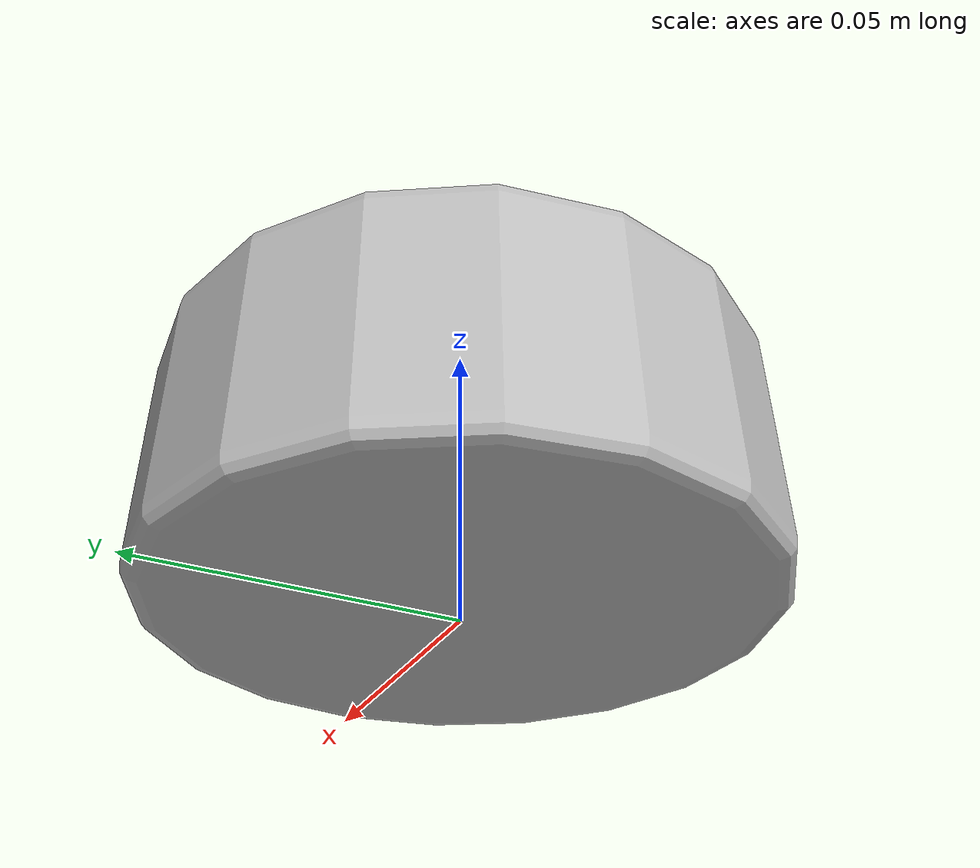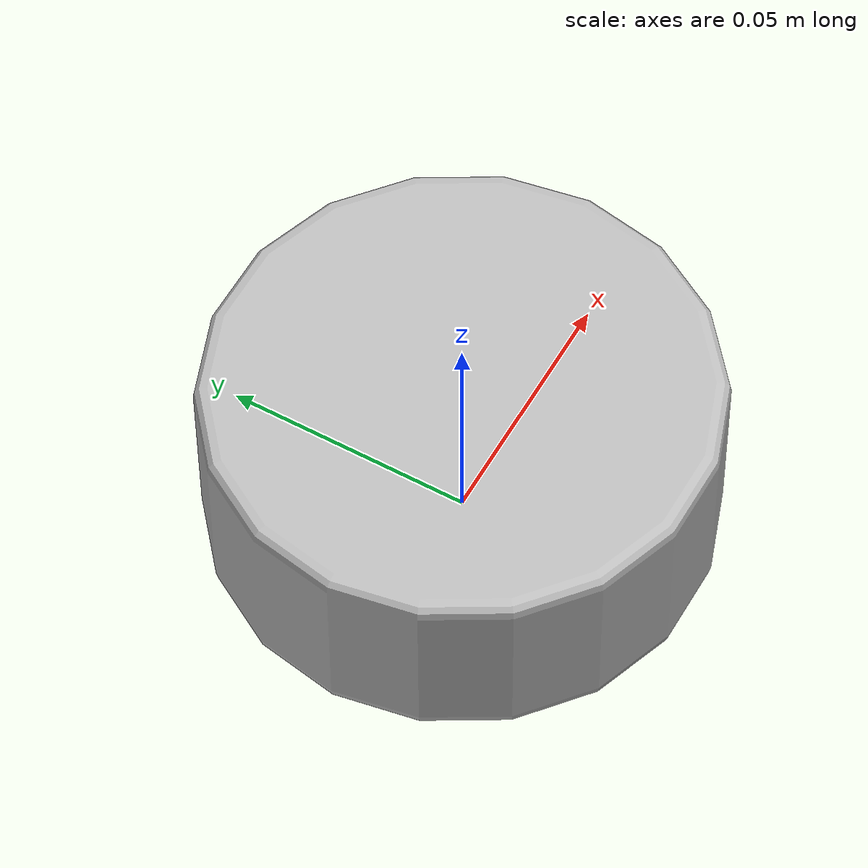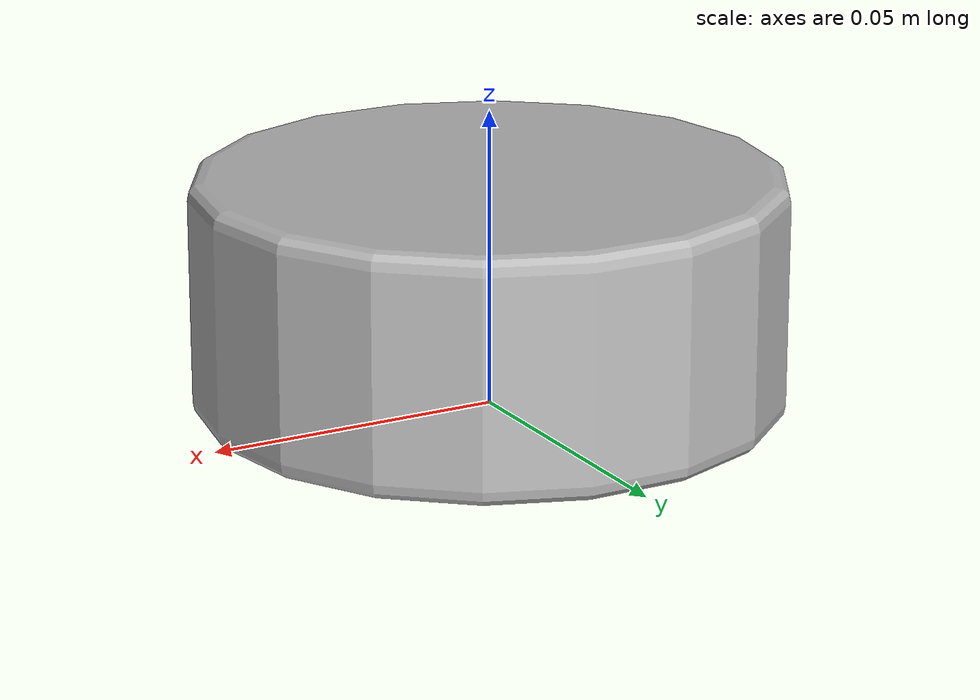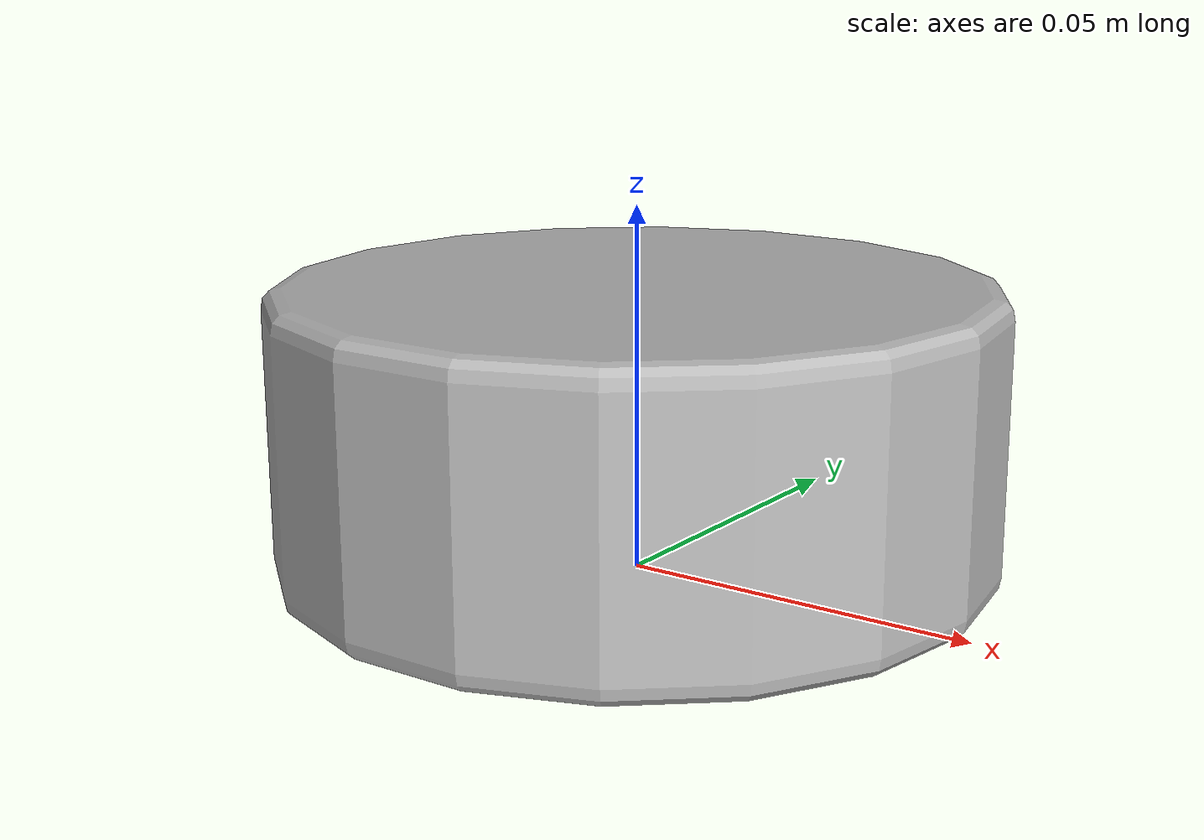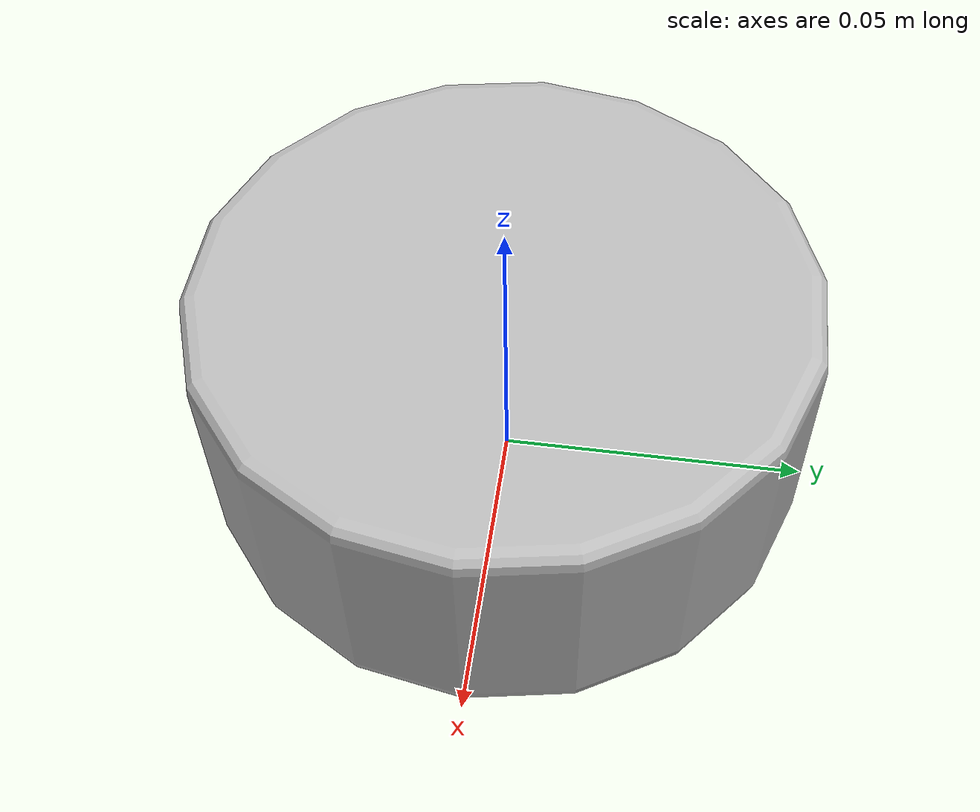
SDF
<?xml version="1.0" ?>
<sdf version="1.6">
  <model name="aws_robomaker_retail_SmartSpeakerSmall_01">
    <link name="link">
      <inertial>
        <mass>0.165</mass>
        <inertia>
          <ixx>0.0300944</ixx>
          <ixy>0</ixy>
          <ixz>0</ixz>
          <iyy>0.0300944</iyy>
          <iyz>0</iyz>
          <izz>0.01250</izz>
        </inertia>
      </inertial>

      <collision name="collision">
        <geometry>
          <mesh>
            <uri>model://aws_robomaker_retail_SmartSpeakerSmall_01/meshes/aws_SmartSpeakerSmall_01_collision.DAE</uri>
            <scale>1 1 1</scale>
          </mesh>
        </geometry>
        <surface>
          <friction>
            <ode>
              <mu>0.85</mu>
              <mu2>0.85</mu2>
            </ode>
          </friction>
          <bounce>
            <restitution_coefficient>0.00</restitution_coefficient>
          </bounce>
        </surface>
      </collision>

      <visual name="visual">
	    <geometry>
          <mesh>
            <uri>model://aws_robomaker_retail_SmartSpeakerSmall_01/meshes/aws_SmartSpeakerSmall_01_visual.DAE</uri>
          </mesh>
        </geometry>
        <meta>
          <layer>1</layer>
        </meta>
      </visual>

</link>
  </model>
</sdf>
